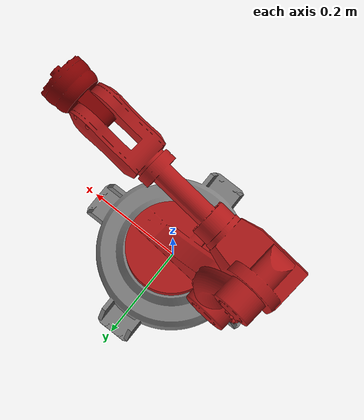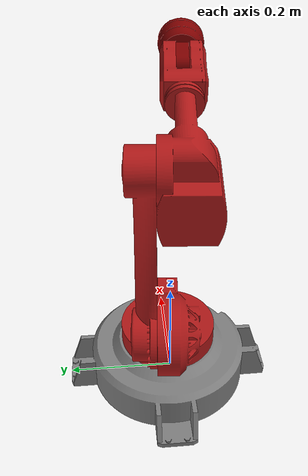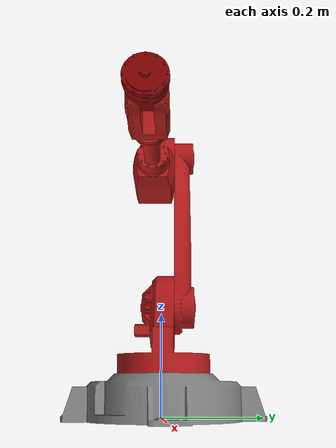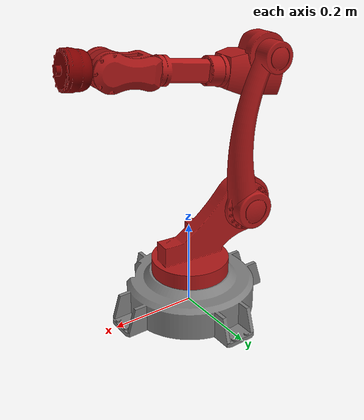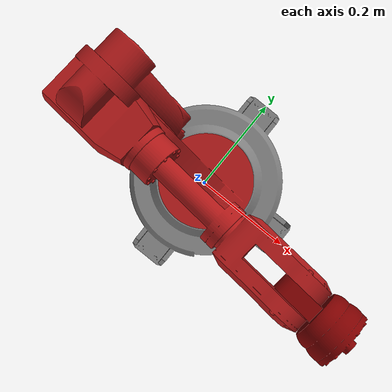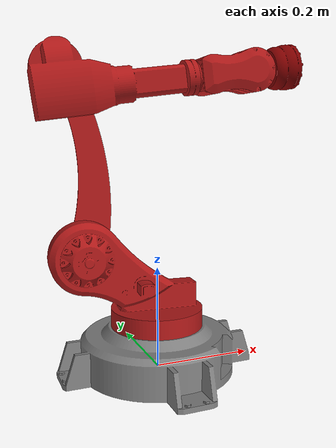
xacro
<?xml version="1.0"?>
<robot name="arm" xmlns:xacro="http://www.ros.org/wiki/xacro">

  <xacro:arg name="use_gazebo" default="false"/>
  <xacro:arg name="fixed_base" default="true"/>
  <xacro:arg name="controllers_file"
             default="$(find arm_description)/config/ros2_controllers.yaml"/>

  <xacro:include filename="$(find arm_description)/urdf/macros/common.xacro"/>
  <xacro:include filename="$(find arm_description)/urdf/macros/materials.xacro"/>
  <xacro:include filename="$(find arm_description)/urdf/macros/mesh_link.xacro"/>
  <xacro:include filename="$(find arm_description)/urdf/macros/joints.xacro"/>
  <xacro:include filename="$(find arm_description)/urdf/macros/arm.xacro"/>
  <xacro:include filename="$(find arm_description)/urdf/macros/gazebo.xacro"/>
  <xacro:include filename="$(find arm_description)/urdf/macros/ros2_control.xacro"/>

  <xacro:arm_robot/>

  <xacro:arm_ros2_control/>

  <xacro:if value="$(arg use_gazebo)">
    <xacro:gz_link_properties name="base_link"/>
    <xacro:gz_link_properties name="turret_link"/>
    <xacro:gz_link_properties name="upper_arm_link"/>
    <xacro:gz_link_properties name="forearm_link"/>
    <xacro:gz_link_properties name="wrist_roll_link"/>
    <xacro:gz_link_properties name="wrist_pitch_link"/>
    <xacro:gz_ros2_control_plugin controllers_file="$(arg controllers_file)"/>
  </xacro:if>

</robot>

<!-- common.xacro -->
<robot xmlns:xacro="http://www.ros.org/wiki/xacro">
  <!-- Meshes exported from CAD in millimetres. -->
  <xacro:property name="mesh_scale" value="0.001 0.001 0.001"/>
  <xacro:property name="mesh_scale_collision" value="0.01 0.01 0.01"/>
</robot>

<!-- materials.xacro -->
<robot xmlns:xacro="http://www.ros.org/wiki/xacro">
  <!-- Colours taken from arm_assembly.step (COLOUR_RGB, 8-bit value / 255). -->
  <!-- base_link body: Opaque(128,128,128) -->
  <material name="base_grey">
    <color rgba="0.501961 0.501961 0.501961 1.0"/>
  </material>
  <!-- turret/upper_arm/forearm/wrist_roll body: Opaque(177,25,25) -->
  <material name="arm_red">
    <color rgba="0.694118 0.098039 0.098039 1.0"/>
  </material>
  <!-- wrist_pitch face colour: Opaque(128,0,0) -->
  <material name="wrist_maroon">
    <color rgba="0.501961 0.0 0.0 1.0"/>
  </material>
</robot>

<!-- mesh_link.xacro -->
<robot xmlns:xacro="http://www.ros.org/wiki/xacro">
  <!-- Rigid link: same visual and collision meshes, with explicit inertial properties. -->
  <xacro:macro name="mesh_link"
               params="name mesh material visual_xyz mass com_xyz ixx iyy izz ixy iyz ixz">
    <link name="${name}">
      <inertial>
        <origin xyz="${com_xyz}" rpy="0 0 0"/>
        <mass value="${mass}"/>
        <inertia ixx="${ixx}" iyy="${iyy}" izz="${izz}" ixy="${ixy}" iyz="${iyz}" ixz="${ixz}"/>
      </inertial>
      <visual>
        <origin xyz="${visual_xyz}" rpy="0 0 0"/>
        <geometry>
          <mesh filename="package://arm_description/meshes/${mesh}" scale="${mesh_scale}"/>
        </geometry>
        <material name="${material}"/>
      </visual>
      <collision>
        <origin xyz="${visual_xyz}" rpy="0 0 0"/>
        <geometry>
          <mesh filename="package://arm_description/meshes/${mesh}" scale="${mesh_scale}"/>
        </geometry>
      </collision>
    </link>
  </xacro:macro>
</robot>

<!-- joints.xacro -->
<robot xmlns:xacro="http://www.ros.org/wiki/xacro">
  <xacro:macro name="continuous_joint" params="name parent child xyz axis">
    <joint name="${name}" type="continuous">
      <origin xyz="${xyz}" rpy="0 0 0"/>
      <parent link="${parent}"/>
      <child link="${child}"/>
      <axis xyz="${axis}"/>
    </joint>
  </xacro:macro>

  <xacro:macro name="revolute_joint"
               params="name parent child xyz axis lower upper effort velocity">
    <joint name="${name}" type="revolute">
      <origin xyz="${xyz}" rpy="0 0 0"/>
      <parent link="${parent}"/>
      <child link="${child}"/>
      <axis xyz="${axis}"/>
      <limit upper="${upper}" lower="${lower}" effort="${effort}" velocity="${velocity}"/>
    </joint>
  </xacro:macro>
</robot>

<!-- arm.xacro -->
<robot xmlns:xacro="http://www.ros.org/wiki/xacro">
  <!--
    Kinematic tree and rigid-body data of the arm.
    All numeric values are carried over unchanged from the original
    arm.xacro (Fusion export); only names changed.
  -->
  <xacro:macro name="arm_robot">

    <!-- fixed world anchor (arg fixed_base). Identity transform. -->
    <xacro:if value="$(arg fixed_base)">
      <link name="world"/>
      <joint name="world_to_base_joint" type="fixed">
        <origin xyz="0 0 0" rpy="0 0 0"/>
        <parent link="world"/>
        <child link="base_link"/>
      </joint>
    </xacro:if>

    <xacro:mesh_link name="base_link" mesh="base_link.stl" material="base_grey"
      visual_xyz="0 0 0" mass="46.82820490588493"
      com_xyz="-0.0013795904255898897 0.006144590422410405 0.03494970550616308"
      ixx="0.294832" iyy="0.294832" izz="0.533146"
      ixy="-0.006274" iyz="-0.000229" ixz="0.000229"/>

    <xacro:mesh_link name="turret_link" mesh="turret_link.stl" material="arm_red"
      visual_xyz="-0.0 -0.004765 -0.104765" mass="17.939967472684376"
      com_xyz="-0.053876625091077754 0.0009658460288886374 0.05659360650225023"
      ixx="0.080055" iyy="0.161621" izz="0.117393"
      ixy="0.003027" iyz="-0.001566" ixz="0.05871"/>

    <xacro:mesh_link name="upper_arm_link" mesh="upper_arm_link.stl" material="arm_red"
      visual_xyz="0.138256 -0.016774 -0.227814" mass="7.270322327784246"
      com_xyz="0.018624083162768285 0.03495204005376849 0.14159796377041436"
      ixx="0.139987" iyy="0.14366" izz="0.005957"
      ixy="0.000561" iyz="0.00041" ixz="-0.002667"/>

    <xacro:mesh_link name="forearm_link" mesh="forearm_link.stl" material="arm_red"
      visual_xyz="0.138256 -0.016774 -0.577814" mass="11.828374188557241"
      com_xyz="0.042815756990162296 -0.02805142576867653 -0.037583917865223415"
      ixx="0.017388" iyy="0.072426" izz="0.068435"
      ixy="0.005705" iyz="-0.001455" ixz="0.003843"/>

    <xacro:mesh_link name="wrist_roll_link" mesh="wrist_roll_link.stl" material="arm_red"
      visual_xyz="-0.084647 0.028566 -0.532814" mass="4.383038580888578"
      com_xyz="0.08741095338802049 -0.00769183748725593 4.2666050170669934e-07"
      ixx="0.00427" iyy="0.009794" izz="0.010983"
      ixy="0.000502" iyz="-0.0" ixz="-0.0"/>

    <xacro:mesh_link name="wrist_pitch_link" mesh="wrist_pitch_link.stl" material="wrist_maroon"
      visual_xyz="-0.215241 0.027363 -0.532814" mass="2.574095398898211"
      com_xyz="0.057550382684715545 -0.016880711992809355 4.262487167672191e-07"
      ixx="0.001826" iyy="0.002708" izz="0.002693"
      ixy="0.000102" iyz="0.0" ixz="-0.0"/>

    <xacro:revolute_joint name="base_yaw_joint" parent="base_link" child="turret_link"
      xyz="0.0 0.004765 0.104765" axis="0.0 0.0 1.0"
      lower="-3.141592" upper="3.141592" effort="100" velocity="100"/>

    <xacro:revolute_joint name="shoulder_pitch_joint" parent="turret_link" child="upper_arm_link"
      xyz="-0.138256 0.012009 0.123049" axis="0.086538 0.996249 0.0"
      lower="4.479" upper="7.833" effort="100" velocity="100"/>

    <xacro:revolute_joint name="elbow_pitch_joint" parent="upper_arm_link" child="forearm_link"
      xyz="0.0 0.0 0.35" axis="-0.086538 -0.996249 -0.0"
      lower="-0.785398" upper="4.276057" effort="100" velocity="100"/>

    <xacro:revolute_joint name="wrist_roll_joint" parent="forearm_link" child="wrist_roll_link"
      xyz="0.222903 -0.04534 -0.045" axis="0.996249 -0.086538 -0.0"
      lower="-3.141592" upper="3.141592" effort="100" velocity="100"/>

    <xacro:revolute_joint name="wrist_pitch_joint" parent="wrist_roll_link" child="wrist_pitch_link"
      xyz="0.130594 0.001203 0.0" axis="-0.086538 -0.996249 0.0"
      lower="-1.570796" upper="1.570796" effort="100" velocity="100"/>

  </xacro:macro>
</robot>
